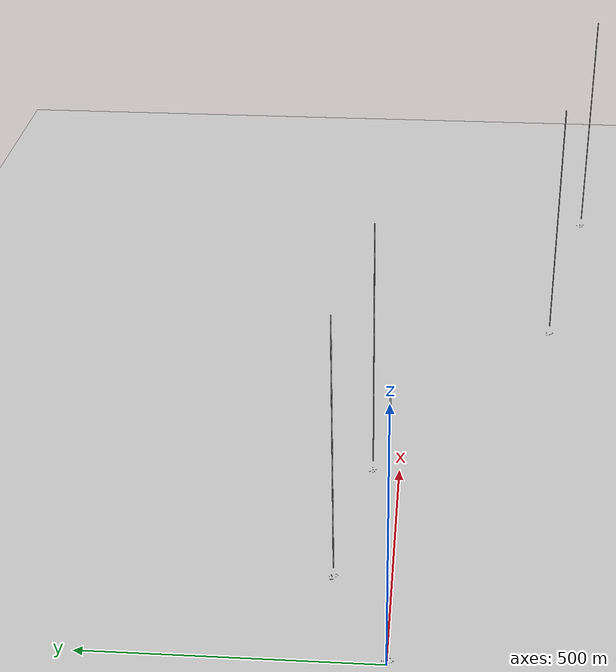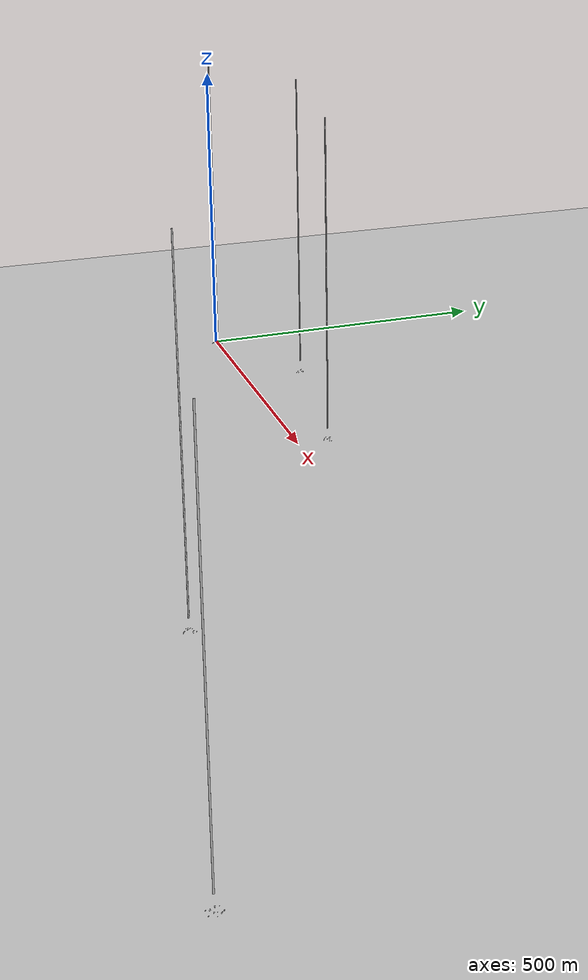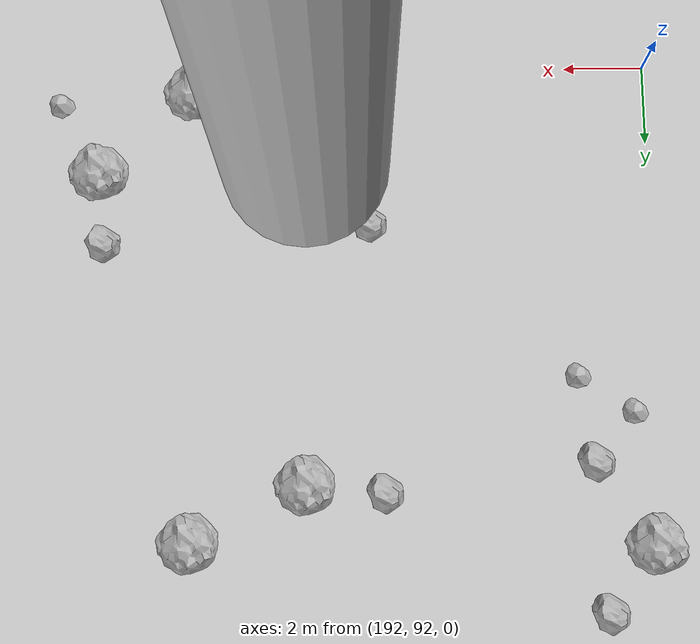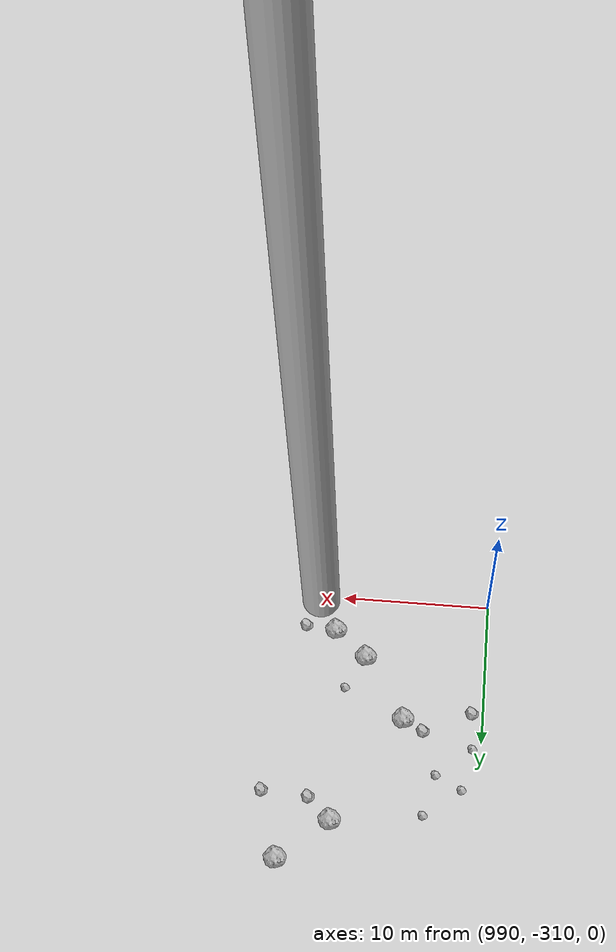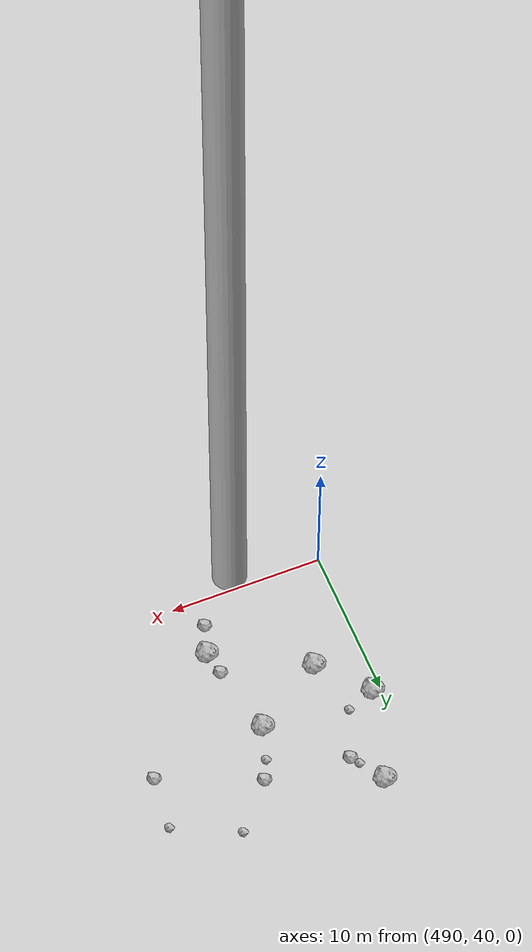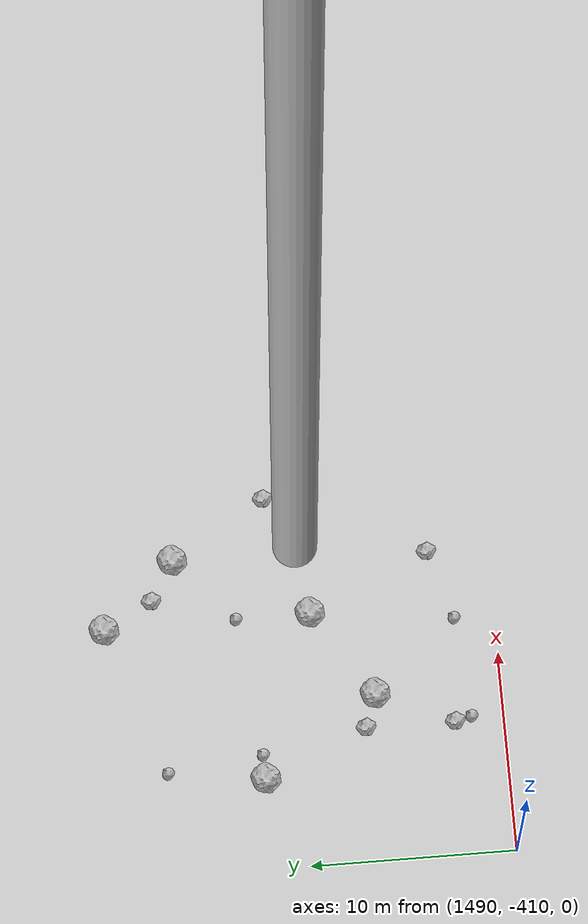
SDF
<?xml version="1.0" ?>
<sdf version="1.6">
  <world name="default">

    <include>
      <uri>model://custom_ground</uri>
    </include>

    <include>
      <uri>model://sun</uri>
    </include>

    <spherical_coordinates>
      <surface_model>EARTH_WGS84</surface_model>
      <latitude_deg>38.161479</latitude_deg>
      <longitude_deg>-122.454630</longitude_deg>
      <elevation>488.0</elevation>
      <heading_deg>90</heading_deg>
    </spherical_coordinates>

    <model name="rock1_0_0">
      <include>
        <uri>model://rock1</uri>
        <pose>9.629352433322332 8.608904535947023 0.5 0 0 0</pose>
      </include>
    </model>
    <model name="rock1_0_1">
      <include>
        <uri>model://rock1</uri>
        <pose>9.545920939433795 -9.84074402926354 0.5 0 0 0</pose>
      </include>
    </model>
    <model name="rock1_0_2">
      <include>
        <uri>model://rock1</uri>
        <pose>15.716970416617375 -4.875013333509024 0.5 0 0 0</pose>
      </include>
    </model>
    <model name="rock1_0_3">
      <include>
        <uri>model://rock1</uri>
        <pose>4.7303793853418075 -3.0691503718711433 0.5 0 0 0</pose>
      </include>
    </model>
    <model name="rock1_0_4">
      <include>
        <uri>model://rock1</uri>
        <pose>6.420371862211325 -7.419522608298472 0.5 0 0 0</pose>
      </include>
    </model>
    <model name="rock2_0_0">
      <include>
        <uri>model://rock2</uri>
        <pose>3.849597735427719 2.285548012017511 0.3 0 0 0</pose>
      </include>
    </model>
    <model name="rock2_0_1">
      <include>
        <uri>model://rock2</uri>
        <pose>14.189575600592704 2.5681246483377667 0.3 0 0 0</pose>
      </include>
    </model>
    <model name="rock2_0_2">
      <include>
        <uri>model://rock2</uri>
        <pose>6.745560072916237 3.210566974339512 0.3 0 0 0</pose>
      </include>
    </model>
    <model name="rock2_0_3">
      <include>
        <uri>model://rock2</uri>
        <pose>9.114796615335143 5.455274948993637 0.3 0 0 0</pose>
      </include>
    </model>
    <model name="rock2_0_4">
      <include>
        <uri>model://rock2</uri>
        <pose>9.979899109485665 -2.4826052667287275 0.3 0 0 0</pose>
      </include>
    </model>
    <model name="rock3_0_0">
      <include>
        <uri>model://rock3</uri>
        <pose>9.714398706459 6.643514615616979 0.2 0 0 0</pose>
      </include>
    </model>
    <model name="rock3_0_1">
      <include>
        <uri>model://rock3</uri>
        <pose>13.96381730907901 0.8111343692287605 0.2 0 0 0</pose>
      </include>
    </model>
    <model name="rock3_0_2">
      <include>
        <uri>model://rock3</uri>
        <pose>18.483223284848556 3.7345975168666374 0.2 0 0 0</pose>
      </include>
    </model>
    <model name="rock3_0_3">
      <include>
        <uri>model://rock3</uri>
        <pose>14.293757845172834 6.613014581660046 0.2 0 0 0</pose>
      </include>
    </model>
    <model name="rock3_0_4">
      <include>
        <uri>model://rock3</uri>
        <pose>10.181896290415576 -2.636786265052069 0.2 0 0 0</pose>
      </include>
    </model>
    <model name="rock1_1_0">
      <include>
        <uri>model://rock1</uri>
        <pose>192.3397710973991 104.02406389862311 0.5 0 0 0</pose>
      </include>
    </model>
    <model name="rock1_1_1">
      <include>
        <uri>model://rock1</uri>
        <pose>205.81138634680886 94.71646016954027 0.5 0 0 0</pose>
      </include>
    </model>
    <model name="rock1_1_2">
      <include>
        <uri>model://rock1</uri>
        <pose>200.7180281042175 102.52747411728396 0.5 0 0 0</pose>
      </include>
    </model>
    <model name="rock1_1_3">
      <include>
        <uri>model://rock1</uri>
        <pose>203.44230318288186 92.68056743980293 0.5 0 0 0</pose>
      </include>
    </model>
    <model name="rock1_1_4">
      <include>
        <uri>model://rock1</uri>
        <pose>203.52972834178615 103.87372892192839 0.5 0 0 0</pose>
      </include>
    </model>
    <model name="rock2_1_0">
      <include>
        <uri>model://rock2</uri>
        <pose>193.44381272205442 105.65931079758306 0.3 0 0 0</pose>
      </include>
    </model>
    <model name="rock2_1_1">
      <include>
        <uri>model://rock2</uri>
        <pose>193.63596867148428 102.05391926543597 0.3 0 0 0</pose>
      </include>
    </model>
    <model name="rock2_1_2">
      <include>
        <uri>model://rock2</uri>
        <pose>199.06580095958907 96.05568186177399 0.3 0 0 0</pose>
      </include>
    </model>
    <model name="rock2_1_3">
      <include>
        <uri>model://rock2</uri>
        <pose>198.76705560904392 102.74006445894149 0.3 0 0 0</pose>
      </include>
    </model>
    <model name="rock2_1_4">
      <include>
        <uri>model://rock2</uri>
        <pose>205.70305837404442 96.48438356100331 0.3 0 0 0</pose>
      </include>
    </model>
    <model name="rock3_1_0">
      <include>
        <uri>model://rock3</uri>
        <pose>199.68355525595663 107.04273670519315 0.2 0 0 0</pose>
      </include>
    </model>
    <model name="rock3_1_1">
      <include>
        <uri>model://rock3</uri>
        <pose>192.60952989821084 100.80054476506945 0.2 0 0 0</pose>
      </include>
    </model>
    <model name="rock3_1_2">
      <include>
        <uri>model://rock3</uri>
        <pose>204.60849041098933 108.17748933795122 0.2 0 0 0</pose>
      </include>
    </model>
    <model name="rock3_1_3">
      <include>
        <uri>model://rock3</uri>
        <pose>206.79232848462277 92.82978895909274 0.2 0 0 0</pose>
      </include>
    </model>
    <model name="rock3_1_4">
      <include>
        <uri>model://rock3</uri>
        <pose>193.97249852910963 99.91267870533414 0.2 0 0 0</pose>
      </include>
    </model>
    <model name="rock1_2_0">
      <include>
        <uri>model://rock1</uri>
        <pose>492.33725501549947 56.09349546648313 0.5 0 0 0</pose>
      </include>
    </model>
    <model name="rock1_2_1">
      <include>
        <uri>model://rock1</uri>
        <pose>497.9199398892318 49.94168392488746 0.5 0 0 0</pose>
      </include>
    </model>
    <model name="rock1_2_2">
      <include>
        <uri>model://rock1</uri>
        <pose>490.6037689143045 50.12623628892943 0.5 0 0 0</pose>
      </include>
    </model>
    <model name="rock1_2_3">
      <include>
        <uri>model://rock1</uri>
        <pose>499.21330301910416 43.8321721132068 0.5 0 0 0</pose>
      </include>
    </model>
    <model name="rock1_2_4">
      <include>
        <uri>model://rock1</uri>
        <pose>493.2959088768059 47.10555621735803 0.5 0 0 0</pose>
      </include>
    </model>
    <model name="rock2_2_0">
      <include>
        <uri>model://rock2</uri>
        <pose>505.43259741664616 50.76006227022032 0.3 0 0 0</pose>
      </include>
    </model>
    <model name="rock2_2_1">
      <include>
        <uri>model://rock2</uri>
        <pose>498.89314681469307 45.35962248341245 0.3 0 0 0</pose>
      </include>
    </model>
    <model name="rock2_2_2">
      <include>
        <uri>model://rock2</uri>
        <pose>498.56905335247177 41.850083541064734 0.3 0 0 0</pose>
      </include>
    </model>
    <model name="rock2_2_3">
      <include>
        <uri>model://rock2</uri>
        <pose>493.69253901769184 53.9323435539697 0.3 0 0 0</pose>
      </include>
    </model>
    <model name="rock2_2_4">
      <include>
        <uri>model://rock2</uri>
        <pose>499.17330594328195 53.37193752379982 0.3 0 0 0</pose>
      </include>
    </model>
    <model name="rock3_2_0">
      <include>
        <uri>model://rock3</uri>
        <pose>501.68638750363255 56.14175582635761 0.2 0 0 0</pose>
      </include>
    </model>
    <model name="rock3_2_1">
      <include>
        <uri>model://rock3</uri>
        <pose>493.28330112498435 54.44263957440166 0.2 0 0 0</pose>
      </include>
    </model>
    <model name="rock3_2_2">
      <include>
        <uri>model://rock3</uri>
        <pose>505.7464763376646 54.17971761821812 0.2 0 0 0</pose>
      </include>
    </model>
    <model name="rock3_2_3">
      <include>
        <uri>model://rock3</uri>
        <pose>492.41794700946707 50.77041664431611 0.2 0 0 0</pose>
      </include>
    </model>
    <model name="rock3_2_4">
      <include>
        <uri>model://rock3</uri>
        <pose>498.53465178120604 52.06599970296246 0.2 0 0 0</pose>
      </include>
    </model>
    <model name="rock1_3_0">
      <include>
        <uri>model://rock1</uri>
        <pose>999.584368102288 -293.93923356790344 0.5 0 0 0</pose>
      </include>
    </model>
    <model name="rock1_3_1">
      <include>
        <uri>model://rock1</uri>
        <pose>1002.8089114416089 -291.19911780056174 0.5 0 0 0</pose>
      </include>
    </model>
    <model name="rock1_3_2">
      <include>
        <uri>model://rock1</uri>
        <pose>1000.3450244512301 -307.39156096345675 0.5 0 0 0</pose>
      </include>
    </model>
    <model name="rock1_3_3">
      <include>
        <uri>model://rock1</uri>
        <pose>998.14365298857 -305.54211708145573 0.5 0 0 0</pose>
      </include>
    </model>
    <model name="rock1_3_4">
      <include>
        <uri>model://rock1</uri>
        <pose>995.3113908768237 -301.2250703314774 0.5 0 0 0</pose>
      </include>
    </model>
    <model name="rock2_3_0">
      <include>
        <uri>model://rock2</uri>
        <pose>990.74771406444 -301.9997682848836 0.3 0 0 0</pose>
      </include>
    </model>
    <model name="rock2_3_1">
      <include>
        <uri>model://rock2</uri>
        <pose>1002.4013708323914 -307.6682257690889 0.3 0 0 0</pose>
      </include>
    </model>
    <model name="rock2_3_2">
      <include>
        <uri>model://rock2</uri>
        <pose>1001.1246281891622 -295.42572875060074 0.3 0 0 0</pose>
      </include>
    </model>
    <model name="rock2_3_3">
      <include>
        <uri>model://rock2</uri>
        <pose>993.9532145099472 -300.51530140033674 0.3 0 0 0</pose>
      </include>
    </model>
    <model name="rock2_3_4">
      <include>
        <uri>model://rock2</uri>
        <pose>1004.2084571075363 -295.64585068495353 0.3 0 0 0</pose>
      </include>
    </model>
    <model name="rock3_3_0">
      <include>
        <uri>model://rock3</uri>
        <pose>993.5841116246879 -294.7779749982861 0.2 0 0 0</pose>
      </include>
    </model>
    <model name="rock3_3_1">
      <include>
        <uri>model://rock3</uri>
        <pose>999.3475901190062 -303.29772599685333 0.2 0 0 0</pose>
      </include>
    </model>
    <model name="rock3_3_2">
      <include>
        <uri>model://rock3</uri>
        <pose>992.9054342765027 -297.57517855474526 0.2 0 0 0</pose>
      </include>
    </model>
    <model name="rock3_3_3">
      <include>
        <uri>model://rock3</uri>
        <pose>990.5799435231881 -299.5473785094144 0.2 0 0 0</pose>
      </include>
    </model>
    <model name="rock3_3_4">
      <include>
        <uri>model://rock3</uri>
        <pose>991.1539408910963 -296.6637176235645 0.2 0 0 0</pose>
      </include>
    </model>
    <model name="rock1_4_0">
      <include>
        <uri>model://rock1</uri>
        <pose>1505.8627315042972 -394.3685338825983 0.5 0 0 0</pose>
      </include>
    </model>
    <model name="rock1_4_1">
      <include>
        <uri>model://rock1</uri>
        <pose>1498.3433514788035 -403.79215902758415 0.5 0 0 0</pose>
      </include>
    </model>
    <model name="rock1_4_2">
      <include>
        <uri>model://rock1</uri>
        <pose>1494.4825745337605 -398.1594858643897 0.5 0 0 0</pose>
      </include>
    </model>
    <model name="rock1_4_3">
      <include>
        <uri>model://rock1</uri>
        <pose>1502.547000426391 -390.80400673248425 0.5 0 0 0</pose>
      </include>
    </model>
    <model name="rock1_4_4">
      <include>
        <uri>model://rock1</uri>
        <pose>1502.682927275392 -400.93294961590396 0.5 0 0 0</pose>
      </include>
    </model>
    <model name="rock2_4_0">
      <include>
        <uri>model://rock2</uri>
        <pose>1496.6933492376752 -403.2203912596709 0.3 0 0 0</pose>
      </include>
    </model>
    <model name="rock2_4_1">
      <include>
        <uri>model://rock2</uri>
        <pose>1505.4166417065733 -406.9045357220567 0.3 0 0 0</pose>
      </include>
    </model>
    <model name="rock2_4_2">
      <include>
        <uri>model://rock2</uri>
        <pose>1496.678664777957 -407.5848420169303 0.3 0 0 0</pose>
      </include>
    </model>
    <model name="rock2_4_3">
      <include>
        <uri>model://rock2</uri>
        <pose>1503.8872417280236 -393.2030622434328 0.3 0 0 0</pose>
      </include>
    </model>
    <model name="rock2_4_4">
      <include>
        <uri>model://rock2</uri>
        <pose>1508.7469444550434 -399.0439319916918 0.3 0 0 0</pose>
      </include>
    </model>
    <model name="rock3_4_0">
      <include>
        <uri>model://rock3</uri>
        <pose>1495.0911474900072 -393.4666889334099 0.2 0 0 0</pose>
      </include>
    </model>
    <model name="rock3_4_1">
      <include>
        <uri>model://rock3</uri>
        <pose>1496.8623551519593 -408.42773623024283 0.2 0 0 0</pose>
      </include>
    </model>
    <model name="rock3_4_2">
      <include>
        <uri>model://rock3</uri>
        <pose>1501.9044386988257 -408.00202129353136 0.2 0 0 0</pose>
      </include>
    </model>
    <model name="rock3_4_3">
      <include>
        <uri>model://rock3</uri>
        <pose>1495.682148082517 -398.1346983026967 0.2 0 0 0</pose>
      </include>
    </model>
    <model name="rock3_4_4">
      <include>
        <uri>model://rock3</uri>
        <pose>1502.642285909794 -397.3119891065422 0.2 0 0 0</pose>
      </include>
    </model>

    <model name="cylinder_1">
      <static>true</static>
      <link name="link">
        <visual name="visual">
          <geometry>
            <cylinder>
              <radius>1</radius>
              <length>500</length>
            </cylinder>
          </geometry>
        </visual>
      </link>
      <pose>10 0 270 0 0 0</pose>
    </model>

    <model name="cylinder_2">
      <static>true</static>
      <link name="link">
        <visual name="visual">
          <geometry>
            <cylinder>
              <radius>1</radius>
              <length>500</length>
            </cylinder>
          </geometry>
        </visual>
      </link>
      <pose>200 100 270 0 0 0</pose>
    </model>

    <model name="cylinder_3">
      <static>true</static>
      <link name="link">
        <visual name="visual">
          <geometry>
            <cylinder>
              <radius>1</radius>
              <length>500</length>
            </cylinder>
          </geometry>
        </visual>
      </link>
      <pose>500 50 270 0 0 0</pose>
    </model>

    <model name="cylinder_4">
      <static>true</static>
      <link name="link">
        <visual name="visual">
          <geometry>
            <cylinder>
              <radius>1</radius>
              <length>500</length>
            </cylinder>
          </geometry>
        </visual>
      </link>
      <pose>1000 -300 270 0 0 0</pose>
    </model>

    <model name="cylinder_5">
      <static>true</static>
      <link name="link">
        <visual name="visual">
          <geometry>
            <cylinder>
              <radius>1</radius>
              <length>500</length>
            </cylinder>
          </geometry>
        </visual>
      </link>
      <pose>1500 -400 270 0 0 0</pose>
    </model>

  </world>
</sdf>

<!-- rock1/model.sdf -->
<sdf version="1.6">
  <model name="rock1">
    <static>true</static> <!-- Set to true if the model should not move -->
    <pose>0 0 0 0 0 0</pose>

    <!--z offset is 0.5 for full scale-->

    <link name="link">
      <collision name="rock1_collision">
        <geometry>
          <mesh>
            <uri>model://meshes/rock1.dae</uri>
          </mesh>
        </geometry>
      </collision>
      <visual name="rock1_visual">
        <geometry>
          <mesh>
            <uri>model://meshes/rock1.dae</uri>
          </mesh>
        </geometry>
        <material>
          <script>
            <uri>model://materials/scripts/sand_pebbles.material</uri>
            <name>custom_ground/Image</name>
          </script>
        </material>
      </visual>
    </link>
  </model>
</sdf>

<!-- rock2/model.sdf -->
<sdf version="1.6">
  <model name="rock2">
    <static>true</static> <!-- Set to true if the model should not move -->
    <pose>0 0 0 0 0 0</pose>

    <!--z offset is 0.3 for full scale-->

    <link name="link">
      <collision name="rock2_collision">
        <geometry>
          <mesh>
            <uri>model://meshes/rock2.dae</uri>
          </mesh>
        </geometry>
      </collision>
      <visual name="rock2_visual">
        <geometry>
          <mesh>
            <uri>model://meshes/rock2.dae</uri>
          </mesh>
        </geometry>
        <material>
          <script>
            <uri>model://materials/scripts/sand_pebbles.material</uri>
            <name>custom_ground/Image</name>
          </script>
        </material>
      </visual>
    </link>
  </model>
</sdf>

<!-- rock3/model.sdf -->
<sdf version="1.6">
  <model name="rock3">
    <static>true</static> <!-- Set to true if the model should not move -->
    <pose>0 0 0 0 0 0</pose>

    <!--z offset is 0.2 for full scale-->

    <link name="link">
      <collision name="rock3_collision">
        <geometry>
          <mesh>
            <uri>model://meshes/rock3.dae</uri>
          </mesh>
        </geometry>
      </collision>
      <visual name="rock3_visual">
        <geometry>
          <mesh>
            <uri>model://meshes/rock3.dae</uri>
          </mesh>
        </geometry>
        <material>
          <script>
            <uri>model://materials/scripts/sand_pebbles.material</uri>
            <name>custom_ground/Image</name>
          </script>
        </material>
      </visual>
    </link>
  </model>
</sdf>

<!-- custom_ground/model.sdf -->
<sdf version="1.6">
  <model name="custom_ground">
    <static>true</static> <!-- Ground is static and immovable -->
    <link name="ground_link">
      <pose>240 0 0 0 0 0</pose> <!-- Position and orientation relative to the world -->
      <!-- Visual Representation -->
      <visual name="ground_visual">
        <geometry>
          <plane>
            <normal>0 0 1</normal> <!-- Upward facing plane -->
            <size>500 500</size> <!-- Size of the plane -->
          </plane>
        </geometry>
        <material>
          <script>
            <uri>model://materials/scripts/sand_pebbles.material</uri>
            <name>custom_ground/Image</name>
          </script>
        </material>
      </visual>

      <!-- Collision Representation -->
      <collision name="ground_collision">
        <geometry>
          <plane>
            <normal>0 0 1</normal>
            <size>100 100</size>
          </plane>
        </geometry>
      </collision>

    </link>
  </model>
</sdf>
